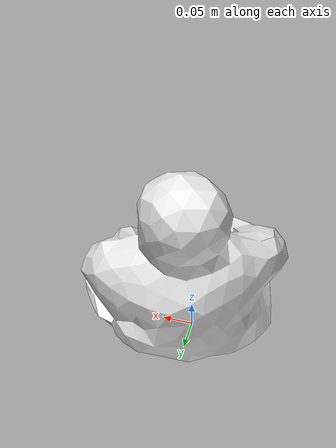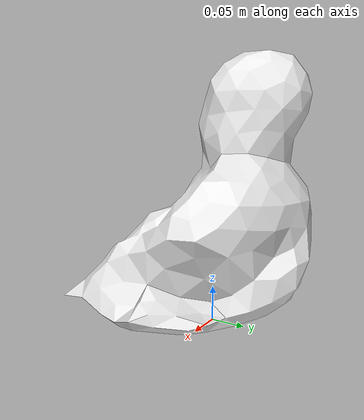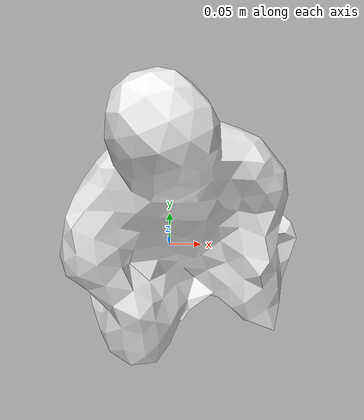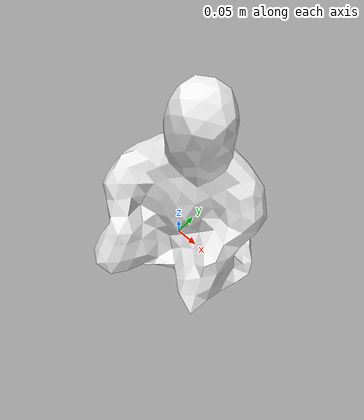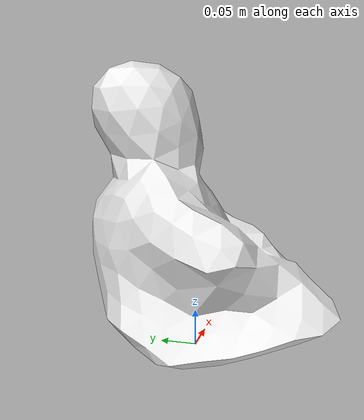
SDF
<?xml version="1.0" ?><sdf version="1.5"><model name="baby-doll1">
<link name="link">
<pose>0 0 0 0 0 0</pose>
<inertial>
<pose>0.023055 -0.0223925 0.200063 0 0 0</pose>
<mass>1.2</mass>
<inertia>
<ixx>0.0244774</ixx>
<ixy>0</ixy><iyy>0.0239844</iyy>
<ixz>0</ixz><iyz>0</iyz><izz>0.0226442</izz>
</inertia>
</inertial>
<visual name="visual">
<pose>0 0 0 0 0 0</pose>
<geometry><mesh><uri>model://baby-doll1/meshes/baby-doll1.dae</uri></mesh></geometry>
<material><script><uri>file://media/materials/scripts/gazebo.material</uri><name>Gazebo/WhiteGlow</name></script></material></visual>
<collision name="collision"><pose>0 0 0 0 0 0</pose><geometry><mesh><uri>model://baby-doll1/meshes/baby-doll1.dae</uri></mesh></geometry>
<surface><friction><ode><mu>1.000000</mu><mu2>1.000000</mu2></ode></friction></surface>
</collision></link></model></sdf>
